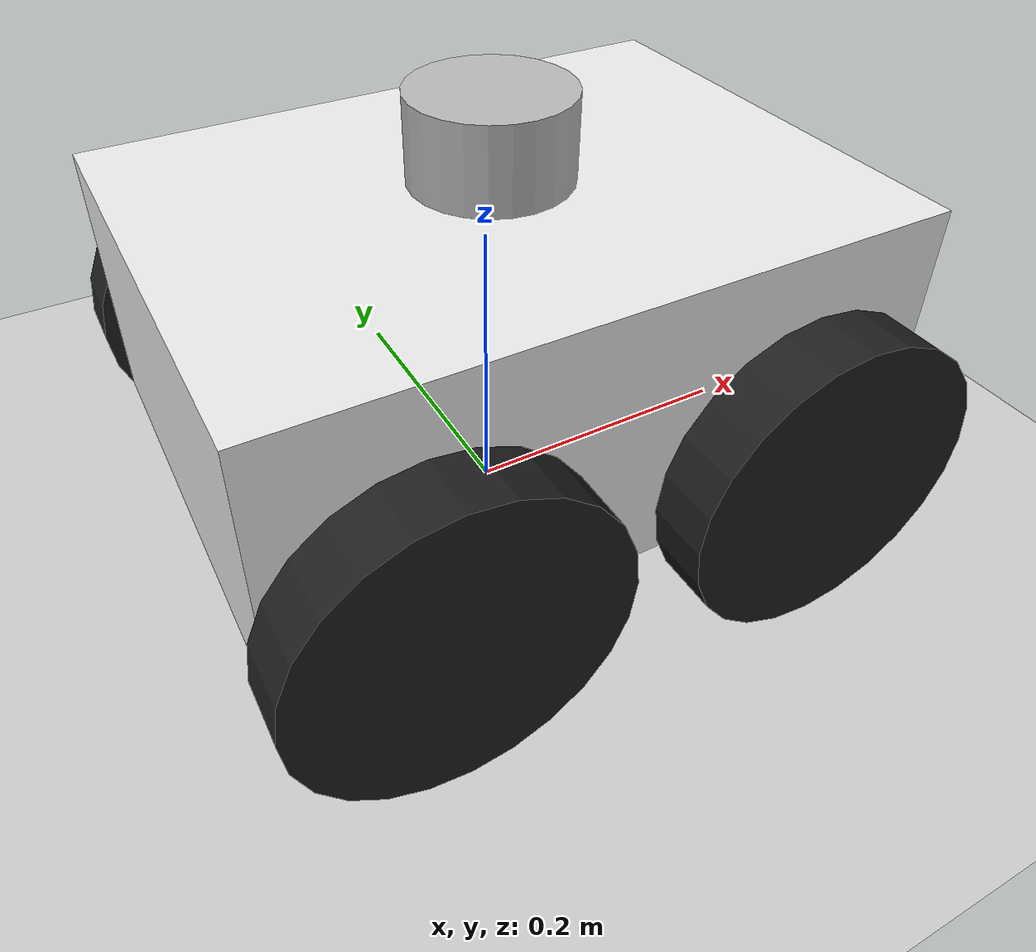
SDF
<sdf version="1.7">
 <world name="default">
  <light name="sun" type="directional">
   <pose>0 0 10 0 -0 0</pose>
   <diffuse>0.8 0.8 0.8 1</diffuse>
   <specular>0.2 0.2 0.2 1</specular>
   <attenuation>
    <range>1000</range>
    <constant>0.9</constant>
    <linear>0.01</linear>
    <quadratic>0.001</quadratic>
   </attenuation>
   <direction>-0.5 0.1 -0.9</direction>
   <spot><inner_angle>0</inner_angle><outer_angle>0</outer_angle><falloff>0</falloff></spot>
  </light>
  <model name="ground_plane">
   <static>1</static>
   <link name="link">
    <collision name="collision">
     <geometry><plane><normal>0 0 1</normal><size>100 100</size></plane></geometry>
     <surface><friction><ode><mu>100</mu><mu2>50</mu2></ode></friction></surface>
    </collision>
    <visual name="visual">
     <cast_shadows>0</cast_shadows>
     <geometry><plane><normal>0 0 1</normal><size>100 100</size></plane></geometry>
     <material>
      <script><uri>file://media/materials/scripts/gazebo.material</uri><name>Gazebo/Grey</name></script>
     </material>
    </visual>
   </link>
  </model>
  <gravity>0 0 -9.8</gravity>
  <magnetic_field>6e-06 2.3e-05 -4.2e-05</magnetic_field>
  <atmosphere type="adiabatic"/>
  <physics type="ode">
   <max_step_size>0.001</max_step_size>
   <real_time_factor>1</real_time_factor>
   <real_time_update_rate>1000</real_time_update_rate>
  </physics>
  <scene><ambient>0.4 0.4 0.4 1</ambient><background>0.7 0.7 0.7 1</background><shadows>1</shadows></scene>
  <audio><device>default</device></audio>
  <spherical_coordinates>
   <surface_model>EARTH_WGS84</surface_model>
   <latitude_deg>0</latitude_deg>
   <longitude_deg>0</longitude_deg>
   <elevation>0</elevation>
   <heading_deg>0</heading_deg>
  </spherical_coordinates>
  <model name="my_robot">
   <link name="base_link">
    <inertial>
     <pose>0.000493 0 -0.146281 0 -0 0</pose>
     <mass>15.26</mass>
     <inertia>
      <ixx>0.175653</ixx>
      <ixy>2.84339e-17</ixy>
      <ixz>-0.00147702</ixz>
      <iyy>0.277642</iyy>
      <iyz>1.44442e-32</iyz>
      <izz>0.344406</izz>
     </inertia>
    </inertial>
    <collision name="base_link_collision"><geometry><box><size>0.42 0.31 0.18</size></box></geometry></collision>
    <collision name="base_link_fixed_joint_lump__camera_link_collision_1">
     <pose>0.215 0 0.05 0 -0 0</pose>
     <geometry><box><size>0.015 0.13 0.022</size></box></geometry>
    </collision>
    <collision name="base_link_fixed_joint_lump__imu_link_collision_2">
     <pose>0 0 0.01 0 -0 0</pose>
     <geometry><box><size>0.1 0.1 0.1</size></box></geometry>
    </collision>
    <collision name="base_link_fixed_joint_lump__laser_frame_collision_3">
     <pose>0 0 0.12 0 -0 0</pose>
     <geometry><cylinder><length>0.055</length><radius>0.0508</radius></cylinder></geometry>
    </collision>
    <visual name="base_link_visual">
     <geometry><box><size>0.42 0.31 0.18</size></box></geometry>
     <material>
      <script><name>Gazebo/White</name><uri>file://media/materials/scripts/gazebo.material</uri></script>
     </material>
    </visual>
    <visual name="base_link_fixed_joint_lump__camera_link_visual_1">
     <pose>0.215 0 0.05 0 -0 0</pose>
     <geometry><box><size>0.015 0.13 0.022</size></box></geometry>
    </visual>
    <visual name="base_link_fixed_joint_lump__imu_link_visual_2">
     <pose>0 0 0.01 0 -0 0</pose>
     <geometry><box><size>0.1 0.1 0.1</size></box></geometry>
    </visual>
    <visual name="base_link_fixed_joint_lump__laser_frame_visual_3">
     <pose>0 0 0.12 0 -0 0</pose>
     <geometry><cylinder><length>0.055</length><radius>0.0508</radius></cylinder></geometry>
    </visual>
    <sensor name="depth_camera" type="depth">
     <visualize>1</visualize>
     <update_rate>30</update_rate>
     <camera name="camera">
      <horizontal_fov>1.0472</horizontal_fov>
      <image><width>640</width><height>480</height><format>R8G8B8</format></image>
      <clip><near>0.05</near><far>3</far></clip>
     </camera>
     <plugin name="depth_camera_controller" filename="libgazebo_ros_camera.so">
      <baseline>0.2</baseline>
      <alwaysOn>1</alwaysOn>
      <updateRate>0.0</updateRate>
      <frame_name>camera_depth_frame</frame_name>
      <pointCloudCutoff>0.5</pointCloudCutoff>
      <pointCloudCutoffMax>3.0</pointCloudCutoffMax>
      <distrotionK1>0</distrotionK1>
      <distrotionK2>0</distrotionK2>
      <distrotionK3>0</distrotionK3>
      <distrotionT1>0</distrotionT1>
      <distrotionT2>0</distrotionT2>
      <CxPrime>0</CxPrime>
      <Cx>0</Cx>
      <Cy>0</Cy>
      <focalLength>0</focalLength>
      <hackBaseline>0</hackBaseline>
     </plugin>
     <pose>0.215 0 0.05 0 -0 0</pose>
    </sensor>
    <sensor name="imu_sensor" type="imu">
     <plugin name="imu_plugin" filename="libgazebo_ros_imu_sensor.so">
      <ros><namespace>/demo</namespace><remapping>~/out:=imu</remapping></ros>
      <initial_orientation_as_reference>0</initial_orientation_as_reference>
     </plugin>
     <always_on>1</always_on>
     <update_rate>100</update_rate>
     <visualize>1</visualize>
     <imu>
      <angular_velocity>
       <x>
        <noise type="gaussian">
         <mean>0</mean>
         <stddev>0.0002</stddev>
         <bias_mean>7.5e-06</bias_mean>
         <bias_stddev>8e-07</bias_stddev>
        </noise>
       </x>
       <y>
        <noise type="gaussian">
         <mean>0</mean>
         <stddev>0.0002</stddev>
         <bias_mean>7.5e-06</bias_mean>
         <bias_stddev>8e-07</bias_stddev>
        </noise>
       </y>
       <z>
        <noise type="gaussian">
         <mean>0</mean>
         <stddev>0.0002</stddev>
         <bias_mean>7.5e-06</bias_mean>
         <bias_stddev>8e-07</bias_stddev>
        </noise>
       </z>
      </angular_velocity>
      <linear_acceleration>
       <x>
        <noise type="gaussian">
         <mean>0</mean>
         <stddev>0.017</stddev>
         <bias_mean>0.1</bias_mean>
         <bias_stddev>0.001</bias_stddev>
        </noise>
       </x>
       <y>
        <noise type="gaussian">
         <mean>0</mean>
         <stddev>0.017</stddev>
         <bias_mean>0.1</bias_mean>
         <bias_stddev>0.001</bias_stddev>
        </noise>
       </y>
       <z>
        <noise type="gaussian">
         <mean>0</mean>
         <stddev>0.017</stddev>
         <bias_mean>0.1</bias_mean>
         <bias_stddev>0.001</bias_stddev>
        </noise>
       </z>
      </linear_acceleration>
     </imu>
     <pose>0 0 0.01 0 -0 0</pose>
    </sensor>
    <sensor name="laser" type="ray">
     <always_on>1</always_on>
     <visualize>1</visualize>
     <update_rate>10</update_rate>
     <ray>
      <scan>
       <horizontal>
        <samples>360</samples>
        <resolution>1</resolution>
        <min_angle>-3.14</min_angle>
        <max_angle>3.14</max_angle>
       </horizontal>
       <vertical><samples>1</samples><min_angle>0</min_angle><max_angle>0</max_angle></vertical>
      </scan>
      <range><min>0.3</min><max>12</max><resolution>0.01</resolution></range>
      <noise><type>gaussian</type><mean>0</mean><stddev>0.01</stddev></noise>
     </ray>
     <plugin name="laser_controller" filename="libgazebo_ros_ray_sensor.so">
      <ros><remapping>~/out:=scan</remapping></ros>
      <output_type>sensor_msgs/LaserScan</output_type>
      <frame_name>laser_frame</frame_name>
     </plugin>
     <pose>0 0 0.12 0 -0 0</pose>
    </sensor>
   </link>
   <joint name="back_left_joint" type="revolute">
    <pose relative_to="base_link">-0.12 0.18 -0.05 0 -0 0</pose>
    <parent>base_link</parent>
    <child>back_left_link</child>
    <axis>
     <xyz>0 1 0</xyz>
     <limit><lower>-1e+16</lower><upper>1e+16</upper></limit>
     <dynamics><spring_reference>0</spring_reference><spring_stiffness>0</spring_stiffness></dynamics>
    </axis>
   </joint>
   <link name="back_left_link">
    <pose relative_to="back_left_joint">0 0 0 0 -0 0</pose>
    <inertial>
     <pose>0 0 0 1.5708 -0 0</pose>
     <mass>0.5</mass>
     <inertia>
      <ixx>0.00131667</ixx>
      <ixy>0</ixy>
      <ixz>0</ixz>
      <iyy>0.00131667</iyy>
      <iyz>0</iyz>
      <izz>0.000416667</izz>
     </inertia>
    </inertial>
    <collision name="back_left_link_collision">
     <pose>0 0 0 1.5708 -0 0</pose>
     <geometry><cylinder><length>0.04</length><radius>0.1</radius></cylinder></geometry>
     <surface><friction><ode><mu>0.1</mu><mu2>0.1</mu2></ode></friction></surface>
    </collision>
    <visual name="back_left_link_visual">
     <pose>0 0 0 1.5708 -0 0</pose>
     <geometry><cylinder><length>0.04</length><radius>0.1</radius></cylinder></geometry>
     <material>
      <script><name>Gazebo/Black</name><uri>file://media/materials/scripts/gazebo.material</uri></script>
     </material>
    </visual>
   </link>
   <joint name="back_right_joint" type="revolute">
    <pose relative_to="base_link">-0.12 -0.18 -0.05 0 -0 0</pose>
    <parent>base_link</parent>
    <child>back_right_link</child>
    <axis>
     <xyz>0 1 0</xyz>
     <limit><lower>-1e+16</lower><upper>1e+16</upper></limit>
     <dynamics><spring_reference>0</spring_reference><spring_stiffness>0</spring_stiffness></dynamics>
    </axis>
   </joint>
   <link name="back_right_link">
    <pose relative_to="back_right_joint">0 0 0 0 -0 0</pose>
    <inertial>
     <pose>0 0 0 1.5708 -0 0</pose>
     <mass>0.5</mass>
     <inertia>
      <ixx>0.00131667</ixx>
      <ixy>0</ixy>
      <ixz>0</ixz>
      <iyy>0.00131667</iyy>
      <iyz>0</iyz>
      <izz>0.000416667</izz>
     </inertia>
    </inertial>
    <collision name="back_right_link_collision">
     <pose>0 0 0 1.5708 -0 0</pose>
     <geometry><cylinder><length>0.04</length><radius>0.1</radius></cylinder></geometry>
     <surface><friction><ode><mu>0.1</mu><mu2>0.1</mu2></ode></friction></surface>
    </collision>
    <visual name="back_right_link_visual">
     <pose>0 0 0 1.5708 -0 0</pose>
     <geometry><cylinder><length>0.04</length><radius>0.1</radius></cylinder></geometry>
     <material>
      <script><name>Gazebo/Black</name><uri>file://media/materials/scripts/gazebo.material</uri></script>
     </material>
    </visual>
   </link>
   <joint name="front_left_joint" type="revolute">
    <pose relative_to="base_link">0.12 0.18 -0.05 0 -0 0</pose>
    <parent>base_link</parent>
    <child>front_left_link</child>
    <axis>
     <xyz>0 1 0</xyz>
     <limit><lower>-1e+16</lower><upper>1e+16</upper></limit>
     <dynamics><spring_reference>0</spring_reference><spring_stiffness>0</spring_stiffness></dynamics>
    </axis>
   </joint>
   <link name="front_left_link">
    <pose relative_to="front_left_joint">0 0 0 0 -0 0</pose>
    <inertial>
     <pose>0 0 0 1.5708 -0 0</pose>
     <mass>0.5</mass>
     <inertia>
      <ixx>0.00131667</ixx>
      <ixy>0</ixy>
      <ixz>0</ixz>
      <iyy>0.00131667</iyy>
      <iyz>0</iyz>
      <izz>0.000416667</izz>
     </inertia>
    </inertial>
    <collision name="front_left_link_collision">
     <pose>0 0 0 1.5708 -0 0</pose>
     <geometry><cylinder><length>0.04</length><radius>0.1</radius></cylinder></geometry>
     <surface><friction><ode><mu>0.1</mu><mu2>0.1</mu2></ode></friction></surface>
    </collision>
    <visual name="front_left_link_visual">
     <pose>0 0 0 1.5708 -0 0</pose>
     <geometry><cylinder><length>0.04</length><radius>0.1</radius></cylinder></geometry>
     <material>
      <script><name>Gazebo/Black</name><uri>file://media/materials/scripts/gazebo.material</uri></script>
     </material>
    </visual>
   </link>
   <joint name="front_right_joint" type="revolute">
    <pose relative_to="base_link">0.12 -0.18 -0.05 0 -0 0</pose>
    <parent>base_link</parent>
    <child>front_right_link</child>
    <axis>
     <xyz>0 1 0</xyz>
     <limit><lower>-1e+16</lower><upper>1e+16</upper></limit>
     <dynamics><spring_reference>0</spring_reference><spring_stiffness>0</spring_stiffness></dynamics>
    </axis>
   </joint>
   <link name="front_right_link">
    <pose relative_to="front_right_joint">0 0 0 0 -0 0</pose>
    <inertial>
     <pose>0 0 0 1.5708 -0 0</pose>
     <mass>0.5</mass>
     <inertia>
      <ixx>0.00131667</ixx>
      <ixy>0</ixy>
      <ixz>0</ixz>
      <iyy>0.00131667</iyy>
      <iyz>0</iyz>
      <izz>0.000416667</izz>
     </inertia>
    </inertial>
    <collision name="front_right_link_collision">
     <pose>0 0 0 1.5708 -0 0</pose>
     <geometry><cylinder><length>0.04</length><radius>0.1</radius></cylinder></geometry>
     <surface><friction><ode><mu>0.1</mu><mu2>0.1</mu2></ode></friction></surface>
    </collision>
    <visual name="front_right_link_visual">
     <pose>0 0 0 1.5708 -0 0</pose>
     <geometry><cylinder><length>0.04</length><radius>0.1</radius></cylinder></geometry>
     <material>
      <script><name>Gazebo/Black</name><uri>file://media/materials/scripts/gazebo.material</uri></script>
     </material>
    </visual>
   </link>
   <static>0</static>
   <plugin name="mecanum_drive_controller" filename="libgazebo_ros_planar_move.so">
    <ros><namespace>/</namespace><remapping>cmd_vel:=cmd_vel</remapping><remapping>odom:=odom</remapping></ros>
    <alwaysOn>1</alwaysOn>
    <updateRate>100</updateRate>
    <front_left_joint>front_left_joint</front_left_joint>
    <front_right_joint>front_right_joint</front_right_joint>
    <back_left_joint>back_left_joint</back_left_joint>
    <back_right_joint>back_right_joint</back_right_joint>
    <max_wheel_torque>200</max_wheel_torque>
    <max_wheel_acceleration>10.0</max_wheel_acceleration>
    <odometry_frame>odom</odometry_frame>
    <robot_base_frame>base_link</robot_base_frame>
    <publish_odom>1</publish_odom>
    <publish_odom_tf>1</publish_odom_tf>
    <publish_wheel_tf>1</publish_wheel_tf>
   </plugin>
   <pose>-8e-06 -0.006928 0.15 4e-06 -5e-06 -0.000363</pose>
  </model>
 </world>
</sdf>
